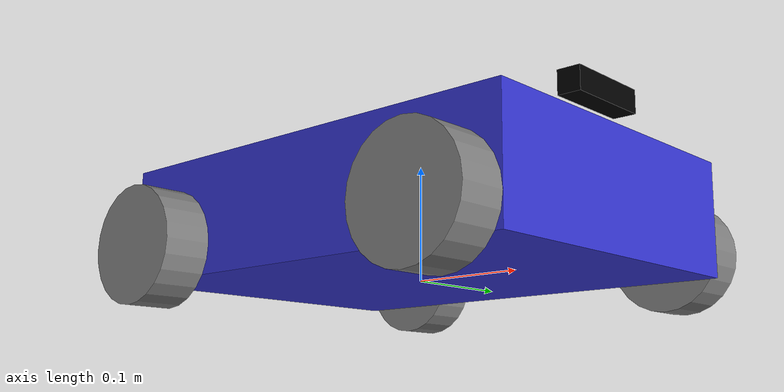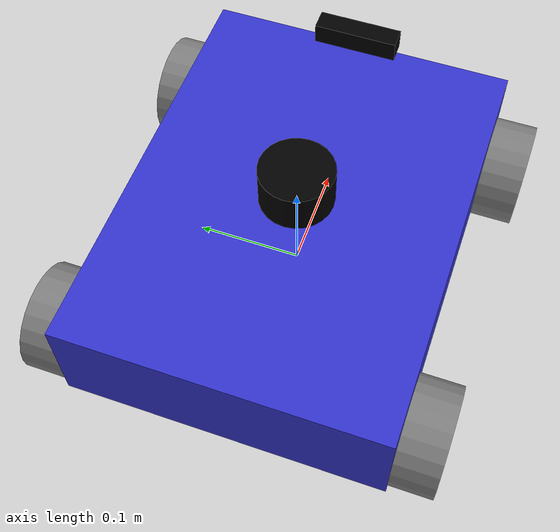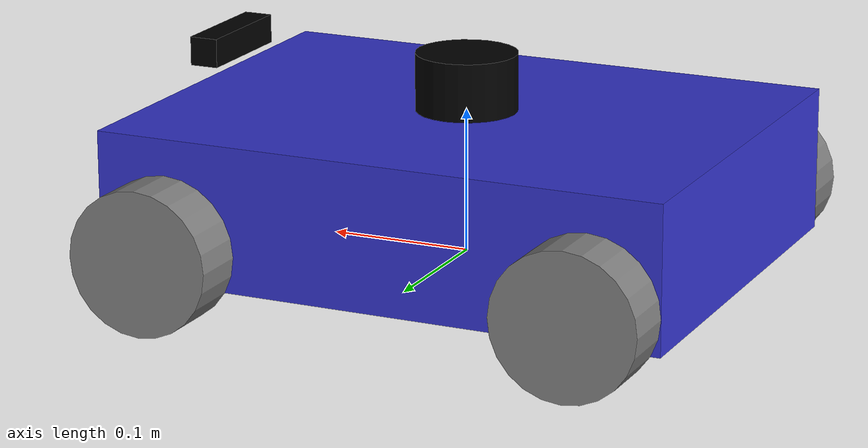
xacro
<?xml version="1.0"?>
<robot name="autonomous_bot" xmlns:xacro="http://www.ros.org/wiki/xacro">
    <!-- Tham số quyết định loại robot truyền vào từ Launch file -->
    <xacro:arg name="drive_type" default="mecanum" />

    <!-- Include các thành phần chung -->
    <xacro:include filename="core/common_macros.xacro"/>
    <xacro:include filename="core/chassis.xacro"/>

    <!-- Include các module (chưa thực thi) -->
    <xacro:include filename="drive/mecanum_drive.xacro"/>
    <xacro:include filename="drive/diff_drive.xacro"/>

    <!-- LÔGIC CHUYỂN ĐỔI -->
    <xacro:if value="${'$(arg drive_type)' == 'mecanum'}">
        <xacro:mecanum_drive /> <!-- Thực thi tạo bánh Mecanum -->
    </xacro:if>

    <xacro:if value="${'$(arg drive_type)' == 'diff'}">
        <xacro:diff_drive /> <!-- Thực thi tạo bánh Diff -->
    </xacro:if>

    <!-- Bạn có thể include Lidar, IMU ở dưới đây một cách độc lập (luôn luôn có) -->
    <!-- INCLUDE CẢM BIẾN -->
    <xacro:include filename="sensors/lidar.xacro"/>
    <xacro:include filename="sensors/imu.xacro"/>
    <xacro:include filename="sensors/camera.xacro"/>

    <!-- INCLUDE GAZEBO CONTROLLERS -->
    <xacro:include filename="gazebo/drive_plugins.xacro"/>
</robot>

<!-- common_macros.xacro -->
<robot xmlns:xacro="http://www.ros.org/wiki/xacro">
    <!-- Macro tính quán tính khối hộp -->
    <xacro:macro name="inertial_box" params="mass x y z *origin">
        <inertial>
            <xacro:insert_block name="origin"/>
            <mass value="${mass}" />
            <inertia ixx="${(1/12) * mass * (y*y+z*z)}" ixy="0.0" ixz="0.0"
                     iyy="${(1/12) * mass * (x*x+z*z)}" iyz="0.0"
                     izz="${(1/12) * mass * (x*x+y*y)}" />
        </inertial>
    </xacro:macro>

    <!-- Macro tính quán tính hình trụ (Bánh xe) -->
    <xacro:macro name="inertial_cylinder" params="mass length radius *origin">
        <inertial>
            <xacro:insert_block name="origin"/>
            <mass value="${mass}" />
            <inertia ixx="${(1/12) * mass * (3*radius*radius + length*length)}" ixy="0.0" ixz="0.0"
                     iyy="${(1/12) * mass * (3*radius*radius + length*length)}" iyz="0.0"
                     izz="${(1/2) * mass * (radius*radius)}" />
        </inertial>
    </xacro:macro>
</robot>

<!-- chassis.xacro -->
<robot xmlns:xacro="http://www.ros.org/wiki/xacro">
    <!-- BASE FOOTPRINT (Hình chiếu của robot xuống mặt đất) -->
    <link name="base_footprint"/>

    <joint name="base_footprint_joint" type="fixed">
        <parent link="base_footprint"/>
        <child link="base_link"/>
        <origin xyz="0 0 0.05" rpy="0 0 0"/> <!-- Nâng gầm lên 5cm -->
    </joint>

    <!-- BASE LINK (Khung gầm chính) -->
    <link name="base_link">
        <visual>
            <origin xyz="0 0 0" rpy="0 0 0"/>
            <geometry>
                <box size="0.4 0.3 0.1"/> <!-- Dài 40cm, rộng 30cm, cao 10cm -->
            </geometry>
            <material name="blue">
                <color rgba="0.2 0.2 0.8 1.0"/>
            </material>
        </visual>
        <collision>
            <geometry>
                <box size="0.4 0.3 0.1"/>
            </geometry>
        </collision>
        <xacro:inertial_box mass="5.0" x="0.4" y="0.3" z="0.1">
            <origin xyz="0 0 0" rpy="0 0 0"/>
        </xacro:inertial_box>
    </link>
</robot>

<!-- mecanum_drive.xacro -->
<robot xmlns:xacro="http://www.ros.org/wiki/xacro">
    <xacro:macro name="mecanum_drive">
        <xacro:property name="wheel_radius" value="0.05"/>
        <xacro:property name="wheel_length" value="0.04"/>

        <!-- Macro tạo bánh xe -->
        <xacro:macro name="mecanum_wheel" params="prefix x_pos y_pos">
            <link name="${prefix}_wheel">
                <visual>
                    <geometry>
                        <cylinder radius="${wheel_radius}" length="${wheel_length}"/>
                    </geometry>
                    <material name="gray"><color rgba="0.5 0.5 0.5 1.0"/></material>
                </visual>
                <collision><geometry><cylinder radius="${wheel_radius}" length="${wheel_length}"/></geometry></collision>
                <xacro:inertial_cylinder mass="0.5" length="${wheel_length}" radius="${wheel_radius}">
                    <origin xyz="0 0 0" rpy="0 0 0"/>
                </xacro:inertial_cylinder>
            </link>

            <joint name="${prefix}_wheel_joint" type="continuous">
                <parent link="base_link"/>
                <child link="${prefix}_wheel"/>
                <origin xyz="${x_pos} ${y_pos} -0.025" rpy="-${pi/2} 0 0"/>
                <axis xyz="0 0 1"/>
            </joint>
        </xacro:macro>

        <!-- Gọi macro để tạo 4 bánh -->
        <xacro:mecanum_wheel prefix="front_left" x_pos="0.15" y_pos="0.17"/>
        <xacro:mecanum_wheel prefix="front_right" x_pos="0.15" y_pos="-0.17"/>
        <xacro:mecanum_wheel prefix="rear_left" x_pos="-0.15" y_pos="0.17"/>
        <xacro:mecanum_wheel prefix="rear_right" x_pos="-0.15" y_pos="-0.17"/>
    </xacro:macro>
</robot>

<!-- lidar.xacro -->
<robot xmlns:xacro="http://www.ros.org/wiki/xacro">
    <!-- Khai báo link và joint vẫn giữ nguyên -->
    <link name="laser_frame">
        <visual>
            <geometry><cylinder radius="0.035" length="0.04"/></geometry>
            <material name="black"><color rgba="0 0 0 1.0"/></material>
        </visual>
        <collision>
            <geometry><cylinder radius="0.035" length="0.04"/></geometry>
        </collision>
        <xacro:inertial_cylinder mass="0.1" length="0.04" radius="0.035">
            <origin xyz="0 0 0" rpy="0 0 0"/>
        </xacro:inertial_cylinder>
    </link>

    <joint name="laser_joint" type="fixed">
        <parent link="base_link"/>
        <child link="laser_frame"/>
        <origin xyz="0 0 0.07" rpy="0 0 0"/>
    </joint>

    <!-- CẬP NHẬT CẤU HÌNH GAZEBO HARMONIC -->
    <gazebo reference="laser_frame">
        <sensor name="laser" type="gpu_lidar">
            <pose>0 0 0 0 0 0</pose>
            <always_on>true</always_on>
            <visualize>true</visualize>
            <update_rate>20</update_rate>
            <ray>
                <scan>
                    <horizontal>
                        <samples>360</samples>
                        <resolution>1</resolution>
                        <min_angle>-3.14</min_angle>
                        <max_angle>3.14</max_angle>
                    </horizontal>
                </scan>
                <range>
                    <min>0.15</min>
                    <max>12.0</max>
                    <resolution>0.01</resolution>
                </range>
            </ray>
            <topic>scan</topic>
            <gz_frame_id>laser_frame</gz_frame_id>
        </sensor>
    </gazebo>
</robot>

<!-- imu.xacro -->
<robot xmlns:xacro="http://www.ros.org/wiki/xacro">
    <!-- Khai báo link và joint giữ nguyên -->
    <link name="imu_link"/>
    <joint name="imu_joint" type="fixed">
        <parent link="base_link"/>
        <child link="imu_link"/>
        <origin xyz="0 0 0" rpy="0 0 0"/>
    </joint>

    <!-- CẬP NHẬT CẤU HÌNH GAZEBO HARMONIC -->
    <gazebo reference="imu_link">
        <sensor name="imu_sensor" type="imu">
            <always_on>true</always_on>
            <update_rate>100</update_rate>
            <visualize>true</visualize>
            <topic>imu/data</topic>
            <gz_frame_id>imu_link</gz_frame_id>
        </sensor>
    </gazebo>
</robot>

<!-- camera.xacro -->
<robot xmlns:xacro="http://www.ros.org/wiki/xacro">
    <!-- Link vật lý của Camera -->
    <link name="camera_link">
        <visual>
            <geometry><box size="0.02 0.08 0.02"/></geometry>
            <material name="black"><color rgba="0 0 0 1.0"/></material>
        </visual>
        <collision>
            <geometry><box size="0.02 0.08 0.02"/></geometry>
        </collision>
        <xacro:inertial_box mass="0.05" x="0.02" y="0.08" z="0.02">
            <origin xyz="0 0 0" rpy="0 0 0"/>
        </xacro:inertial_box>
    </link>

    <!-- Gắn Camera lên đầu xe (Cách tâm 18cm về phía trước, cao 8cm) -->
    <joint name="camera_joint" type="fixed">
        <parent link="base_link"/>
        <child link="camera_link"/>
        <origin xyz="0.18 0 0.08" rpy="0 0 0"/>
    </joint>

    <!-- Optical Frame: Bắt buộc đối với ROS 2 (Z hướng về trước, X sang phải, Y hướng xuống) -->
    <link name="camera_optical_link"/>
    <joint name="camera_optical_joint" type="fixed">
        <parent link="camera_link"/>
        <child link="camera_optical_link"/>
        <origin xyz="0 0 0" rpy="${-pi/2} 0 ${-pi/2}"/>
    </joint>

    <!-- Cấu hình Cảm biến chiều sâu cho Gazebo Harmonic -->
    <gazebo reference="camera_link">
        <sensor name="depth_camera" type="rgbd_camera">
            <always_on>true</always_on>
            <update_rate>15</update_rate>
            <visualize>true</visualize>
            <topic>camera</topic>
            <gz_frame_id>camera_optical_link</gz_frame_id>
            <camera>
                <horizontal_fov>1.047</horizontal_fov> <!-- Góc nhìn 60 độ -->
                <image>
                    <width>640</width>
                    <height>480</height>
                    <format>R8G8B8</format>
                </image>
                <clip>
                    <near>0.1</near>
                    <far>5.0</far> <!-- Giới hạn nhìn xa 5 mét -->
                </clip>
            </camera>
        </sensor>
    </gazebo>
</robot>
